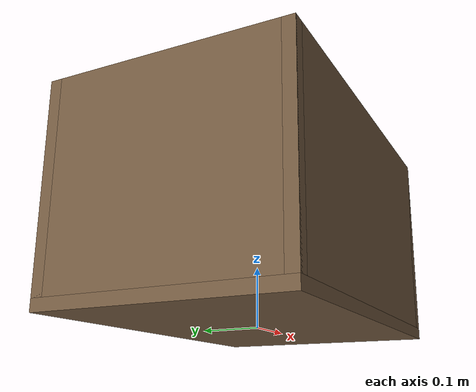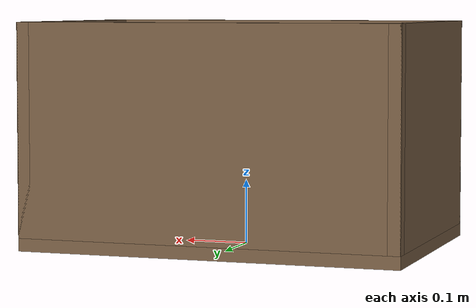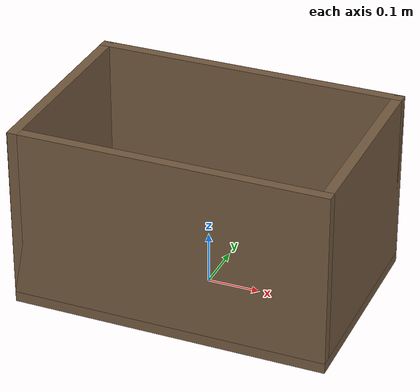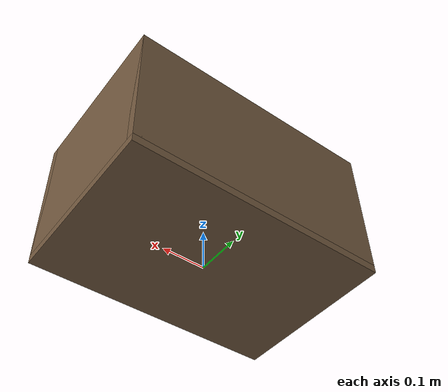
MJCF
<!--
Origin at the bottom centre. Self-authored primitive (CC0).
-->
<mujoco model="crate_heavy">
  <asset>
    <material name="mat" rgba="0.45 0.35 0.25 1"/>
  </asset>
  <worldbody>
    <body name="crate_heavy">
      <geom name="bottom" type="box" size="0.30 0.20 0.010" pos="0 0 0.010" material="mat" condim="4" friction="0.9 0.02 0.0005"/>
      <geom name="wall_py" type="box" size="0.30 0.010 0.165" pos="0 0.19 0.185" material="mat" condim="4" friction="0.9 0.02 0.0005"/>
      <geom name="wall_ny" type="box" size="0.30 0.010 0.165" pos="0 -0.19 0.185" material="mat" condim="4" friction="0.9 0.02 0.0005"/>
      <geom name="wall_px" type="box" size="0.010 0.20 0.165" pos="0.29 0 0.185" material="mat" condim="4" friction="0.9 0.02 0.0005"/>
      <geom name="wall_nx" type="box" size="0.010 0.20 0.165" pos="-0.29 0 0.185" material="mat" condim="4" friction="0.9 0.02 0.0005"/>
    </body>
  </worldbody>
</mujoco>
